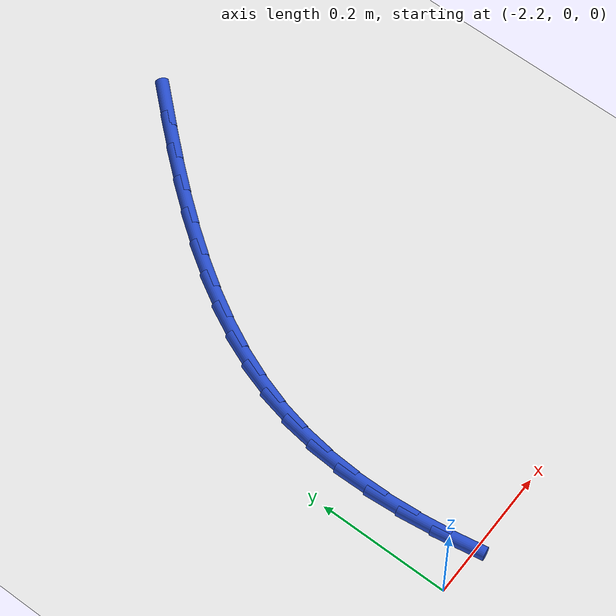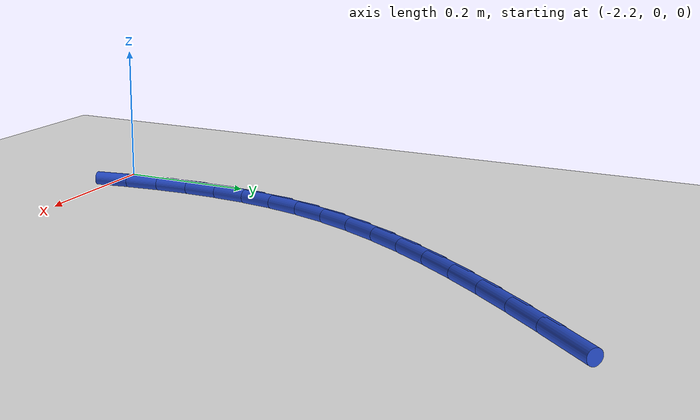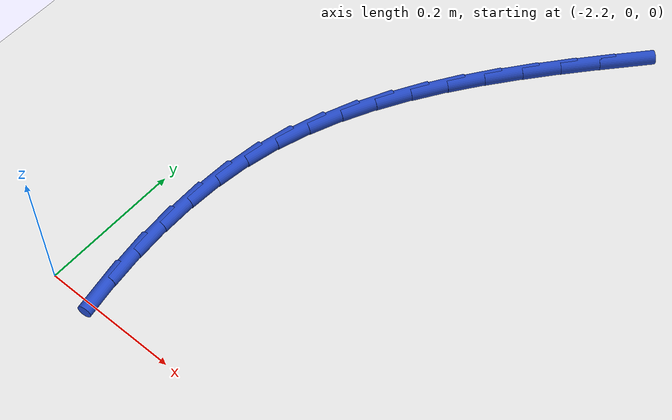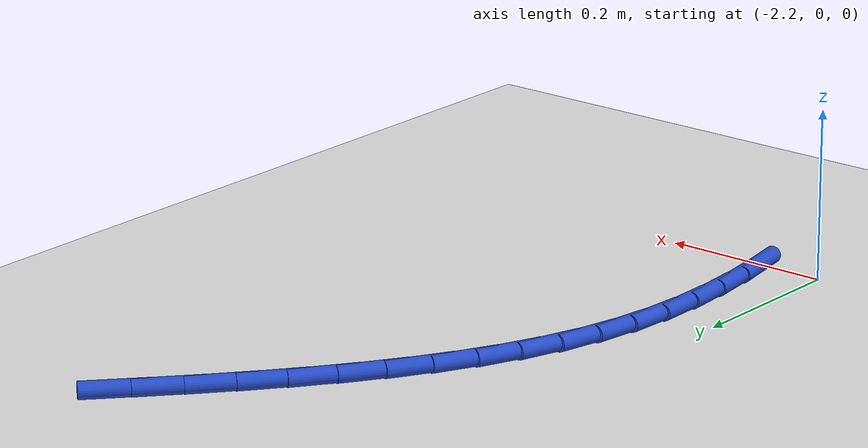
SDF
<sdf version="1.6">
 <world name="default">
  <model name="ground_plane">
   <static>1</static>
   <link name="link">
    <collision name="collision">
     <geometry><plane><normal>0 0 1</normal><size>100 100</size></plane></geometry>
     <surface><friction><ode><mu>100</mu><mu2>50</mu2></ode></friction></surface>
    </collision>
    <visual name="visual">
     <cast_shadows>0</cast_shadows>
     <geometry><plane><normal>0 0 1</normal><size>100 100</size></plane></geometry>
     <material>
      <script><uri>file://media/materials/scripts/gazebo.material</uri><name>Gazebo/WhiteGlow</name></script>
     </material>
    </visual>
   </link>
  </model>
  <model name="line">
   <link name="link_49">
    <pose>-1.8429238220345807 0.7622722251075241 0.01 0 1.57 0.8362284170052463</pose>
    <collision name="collision">
     <geometry><cylinder><radius>0.01</radius><length>0.08</length></cylinder></geometry>
    </collision>
    <visual name="visual">
     <material>
      <script><name>Gazebo/Blue</name><uri>file://media/materials/scripts/gazebo.material</uri></script>
     </material>
     <geometry><cylinder><radius>0.01</radius><length>0.08</length></cylinder></geometry>
    </visual>
   </link>
   <link name="link_50">
    <pose>-1.8801737467317408 0.7210290357729776 0.01 0 1.57 0.8542601677528066</pose>
    <collision name="collision">
     <geometry><cylinder><radius>0.01</radius><length>0.08</length></cylinder></geometry>
    </collision>
    <visual name="visual">
     <material>
      <script><name>Gazebo/Blue</name><uri>file://media/materials/scripts/gazebo.material</uri></script>
     </material>
     <geometry><cylinder><radius>0.01</radius><length>0.08</length></cylinder></geometry>
    </visual>
   </link>
   <link name="link_51">
    <pose>-1.91634216956901 0.6795018656459425 0.01 0 1.57 0.8786308329174074</pose>
    <collision name="collision">
     <geometry><cylinder><radius>0.01</radius><length>0.08</length></cylinder></geometry>
    </collision>
    <visual name="visual">
     <material>
      <script><name>Gazebo/Blue</name><uri>file://media/materials/scripts/gazebo.material</uri></script>
     </material>
     <geometry><cylinder><radius>0.01</radius><length>0.08</length></cylinder></geometry>
    </visual>
   </link>
   <link name="link_52">
    <pose>-1.9510793500967458 0.6375985074632885 0.01 0 1.57 0.9097474305211894</pose>
    <collision name="collision">
     <geometry><cylinder><radius>0.01</radius><length>0.08</length></cylinder></geometry>
    </collision>
    <visual name="visual">
     <material>
      <script><name>Gazebo/Blue</name><uri>file://media/materials/scripts/gazebo.material</uri></script>
     </material>
     <geometry><cylinder><radius>0.01</radius><length>0.08</length></cylinder></geometry>
    </visual>
   </link>
   <link name="link_53">
    <pose>-1.9840355478653051 0.5952267539618848 0.01 0 1.57 0.9480910401642239</pose>
    <collision name="collision">
     <geometry><cylinder><radius>0.01</radius><length>0.08</length></cylinder></geometry>
    </collision>
    <visual name="visual">
     <material>
      <script><name>Gazebo/Blue</name><uri>file://media/materials/scripts/gazebo.material</uri></script>
     </material>
     <geometry><cylinder><radius>0.01</radius><length>0.08</length></cylinder></geometry>
    </visual>
   </link>
   <link name="link_54">
    <pose>-2.014861022425045 0.5522943978786004 0.01 0 1.57 0.9941848026404639</pose>
    <collision name="collision">
     <geometry><cylinder><radius>0.01</radius><length>0.08</length></cylinder></geometry>
    </collision>
    <visual name="visual">
     <material>
      <script><name>Gazebo/Blue</name><uri>file://media/materials/scripts/gazebo.material</uri></script>
     </material>
     <geometry><cylinder><radius>0.01</radius><length>0.08</length></cylinder></geometry>
    </visual>
   </link>
   <link name="link_55">
    <pose>-2.043206033326323 0.508709231950305 0.01 0 1.57 1.0485391480050996</pose>
    <collision name="collision">
     <geometry><cylinder><radius>0.01</radius><length>0.08</length></cylinder></geometry>
    </collision>
    <visual name="visual">
     <material>
      <script><name>Gazebo/Blue</name><uri>file://media/materials/scripts/gazebo.material</uri></script>
     </material>
     <geometry><cylinder><radius>0.01</radius><length>0.08</length></cylinder></geometry>
    </visual>
   </link>
   <link name="link_56">
    <pose>-2.068720840119495 0.46437904891386844 0.01 0 1.57 1.1115658752145563</pose>
    <collision name="collision">
     <geometry><cylinder><radius>0.01</radius><length>0.08</length></cylinder></geometry>
    </collision>
    <visual name="visual">
     <material>
      <script><name>Gazebo/Blue</name><uri>file://media/materials/scripts/gazebo.material</uri></script>
     </material>
     <geometry><cylinder><radius>0.01</radius><length>0.08</length></cylinder></geometry>
    </visual>
   </link>
   <link name="link_57">
    <pose>-2.091055702354919 0.4192116415061597 0.01 0 1.57 1.1834558699374502</pose>
    <collision name="collision">
     <geometry><cylinder><radius>0.01</radius><length>0.08</length></cylinder></geometry>
    </collision>
    <visual name="visual">
     <material>
      <script><name>Gazebo/Blue</name><uri>file://media/materials/scripts/gazebo.material</uri></script>
     </material>
     <geometry><cylinder><radius>0.01</radius><length>0.08</length></cylinder></geometry>
    </visual>
   </link>
   <link name="link_58">
    <pose>-2.109860879582952 0.3731148024640478 0.01 0 1.57 1.264025486674861</pose>
    <collision name="collision">
     <geometry><cylinder><radius>0.01</radius><length>0.08</length></cylinder></geometry>
    </collision>
    <visual name="visual">
     <material>
      <script><name>Gazebo/Blue</name><uri>file://media/materials/scripts/gazebo.material</uri></script>
     </material>
     <geometry><cylinder><radius>0.01</radius><length>0.08</length></cylinder></geometry>
    </visual>
   </link>
   <link name="link_59">
    <pose>-2.1247866313539503 0.3259963245244028 0.01 0 1.57 1.3519924717941554</pose>
    <collision name="collision">
     <geometry><cylinder><radius>0.01</radius><length>0.08</length></cylinder></geometry>
    </collision>
    <visual name="visual">
     <material>
      <script><name>Gazebo/Blue</name><uri>file://media/materials/scripts/gazebo.material</uri></script>
     </material>
     <geometry><cylinder><radius>0.01</radius><length>0.08</length></cylinder></geometry>
    </visual>
   </link>
   <link name="link_60">
    <pose>-2.135509727290256 0.27777311533441806 0.01 0 1.57 1.4382590633173573</pose>
    <collision name="collision">
     <geometry><cylinder><radius>0.01</radius><length>0.08</length></cylinder></geometry>
    </collision>
    <visual name="visual">
     <material>
      <script><name>Gazebo/Blue</name><uri>file://media/materials/scripts/gazebo.material</uri></script>
     </material>
     <geometry><cylinder><radius>0.01</radius><length>0.08</length></cylinder></geometry>
    </visual>
   </link>
   <link name="link_61">
    <pose>-2.1420800446331794 0.22849036746220308 0.01 0 1.57 1.516210863848117</pose>
    <collision name="collision">
     <geometry><cylinder><radius>0.01</radius><length>0.08</length></cylinder></geometry>
    </collision>
    <visual name="visual">
     <material>
      <script><name>Gazebo/Blue</name><uri>file://media/materials/scripts/gazebo.material</uri></script>
     </material>
     <geometry><cylinder><radius>0.01</radius><length>0.08</length></cylinder></geometry>
    </visual>
   </link>
   <link name="link_62">
    <pose>-2.1448230867422384 0.17828804150787608 0.01 0 1.57 -1.5560409791824403</pose>
    <collision name="collision">
     <geometry><cylinder><radius>0.01</radius><length>0.08</length></cylinder></geometry>
    </collision>
    <visual name="visual">
     <material>
      <script><name>Gazebo/Blue</name><uri>file://media/materials/scripts/gazebo.material</uri></script>
     </material>
     <geometry><cylinder><radius>0.01</radius><length>0.08</length></cylinder></geometry>
    </visual>
   </link>
   <link name="link_63">
    <pose>-2.144070808579625 0.12730831631448747 0.01 0 1.57 -1.495078769074497</pose>
    <collision name="collision">
     <geometry><cylinder><radius>0.01</radius><length>0.08</length></cylinder></geometry>
    </collision>
    <visual name="visual">
     <material>
      <script><name>Gazebo/Blue</name><uri>file://media/materials/scripts/gazebo.material</uri></script>
     </material>
     <geometry><cylinder><radius>0.01</radius><length>0.08</length></cylinder></geometry>
    </visual>
   </link>
   <link name="link_64">
    <pose>-2.1401551651075286 0.07569337072508739 0.01 0 1.57 -1.4420306075207425</pose>
    <collision name="collision">
     <geometry><cylinder><radius>0.01</radius><length>0.08</length></cylinder></geometry>
    </collision>
    <visual name="visual">
     <material>
      <script><name>Gazebo/Blue</name><uri>file://media/materials/scripts/gazebo.material</uri></script>
     </material>
     <geometry><cylinder><radius>0.01</radius><length>0.08</length></cylinder></geometry>
    </visual>
   </link>
   <link name="link_65">
    <pose>-2.1334081112881407 0.023585383582725498 0.01 0 1.57 -1.3963262865649302</pose>
    <collision name="collision">
     <geometry><cylinder><radius>0.01</radius><length>0.08</length></cylinder></geometry>
    </collision>
    <visual name="visual">
     <material>
      <script><name>Gazebo/Blue</name><uri>file://media/materials/scripts/gazebo.material</uri></script>
     </material>
     <geometry><cylinder><radius>0.01</radius><length>0.08</length></cylinder></geometry>
    </visual>
   </link>
  </model>
 </world>
</sdf>
